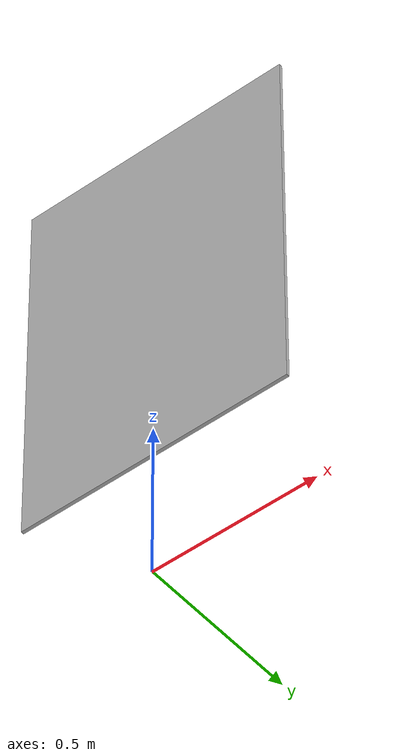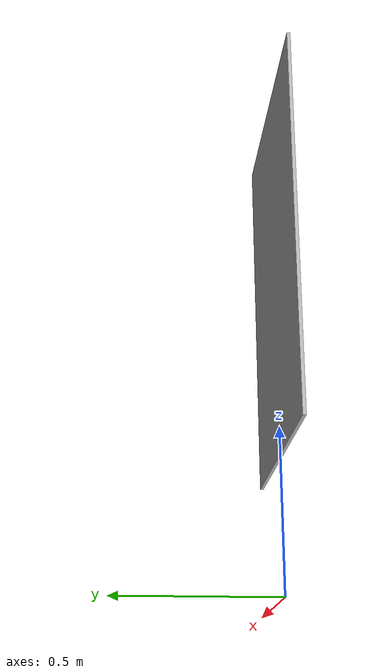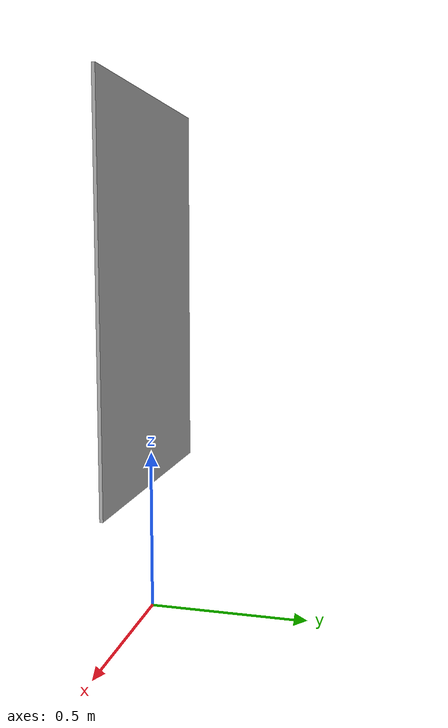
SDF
<?xml version="1.0" ?>
<sdf version="1.5">
  <model name="C4">
    <pose>0 0 1 0 0 0</pose>
    <static>true</static>
    <link name="link">
      <inertial>
        <mass>1.0</mass>
        <inertia> <!-- inertias are tricky to compute -->
          <!-- http://gazebosim.org/tutorials?tut=inertia&cat=build_robot -->
          <ixx>0.083</ixx>       <!-- for a box: ixx = 0.083 * mass * (y*y + z*z) -->
          <ixy>0.0</ixy>         <!-- for a box: ixy = 0 -->
          <ixz>0.0</ixz>         <!-- for a box: ixz = 0 -->
          <iyy>0.083</iyy>       <!-- for a box: iyy = 0.083 * mass * (x*x + z*z) -->
          <iyz>0.0</iyz>         <!-- for a box: iyz = 0 -->
          <izz>0.083</izz>       <!-- for a box: izz = 0.083 * mass * (x*x + y*y) -->
        </inertia>
      </inertial>
      <collision name="collision">
        <geometry>
          <box>
            <size>0.841 0.01 1.189</size>
          </box>
        </geometry>
      </collision>
      <visual name="visual">
        <geometry>
          <box>
            <size>0.841 0.01 1.189</size>
          </box>
        </geometry>
                 <material>
      <script>
        <uri>model://C4/materials/scripts/</uri>
        <uri>model://C4/materials/textures/</uri>
        <name>C4Texture</name>
      </script>
    </material>
      </visual>
    </link>
  </model>
</sdf>
